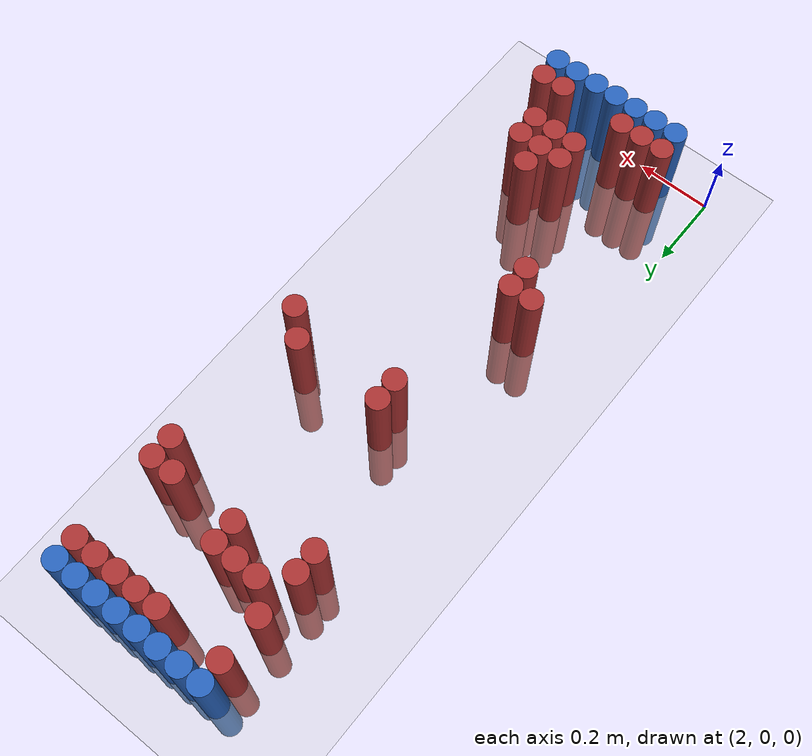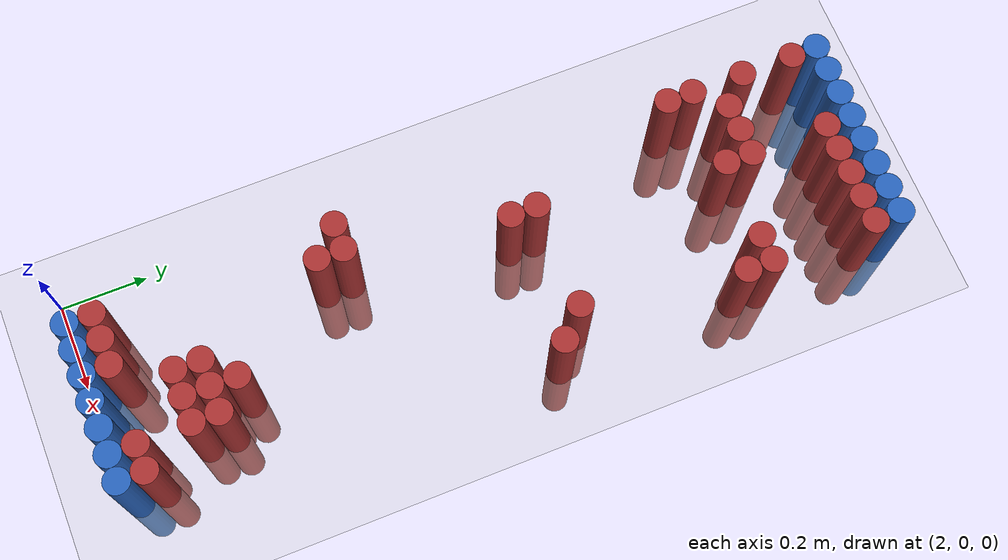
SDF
<sdf version="1.6">
 <world name="default">
  <model name="ground_plane">
   <static>1</static>
   <link name="link">
    <collision name="collision">
     <geometry><plane><normal>0 0 1</normal><size>100 100</size></plane></geometry>
     <surface><friction><ode><mu>100</mu><mu2>50</mu2></ode></friction></surface>
    </collision>
    <visual name="visual">
     <cast_shadows>0</cast_shadows>
     <geometry><plane><normal>0 0 1</normal><size>100 100</size></plane></geometry>
     <material>
      <script><uri>file://media/materials/scripts/gazebo.material</uri><name>Gazebo/Grey</name></script>
     </material>
    </visual>
   </link>
  </model>
  <model name="unit_cylinder_96">
   <static>1</static>
   <pose>2.130000 1.770000 0.000000 0.000000 0.000000 0.000000</pose>
   <link name="link">
    <inertial>
     <mass>1</mass>
     <inertia><ixx>0.145833</ixx><ixy>0</ixy><ixz>0</ixz><iyy>0.145833</iyy><iyz>0</iyz><izz>0.125</izz></inertia>
    </inertial>
    <collision name="collision">
     <geometry><cylinder><radius>0.030000</radius><length>0.5</length></cylinder></geometry>
    </collision>
    <visual name="visual">
     <geometry><cylinder><radius>0.030000</radius><length>0.5</length></cylinder></geometry>
     <material>
      <ambient>0.152000 0.379000 0.720000 1</ambient>
      <diffuse>0.152000 0.379000 0.720000 1</diffuse>
     </material>
     <material>
      <script><name>Gazebo/Grey</name><uri>file://media/materials/scripts/gazebo.material</uri></script>
     </material>
    </visual>
   </link>
  </model>
  <model name="unit_cylinder_97">
   <static>1</static>
   <pose>2.190000 1.770000 0.000000 0.000000 0.000000 0.000000</pose>
   <link name="link">
    <inertial>
     <mass>1</mass>
     <inertia><ixx>0.145833</ixx><ixy>0</ixy><ixz>0</ixz><iyy>0.145833</iyy><iyz>0</iyz><izz>0.125</izz></inertia>
    </inertial>
    <collision name="collision">
     <geometry><cylinder><radius>0.030000</radius><length>0.5</length></cylinder></geometry>
    </collision>
    <visual name="visual">
     <geometry><cylinder><radius>0.030000</radius><length>0.5</length></cylinder></geometry>
     <material>
      <ambient>0.152000 0.379000 0.720000 1</ambient>
      <diffuse>0.152000 0.379000 0.720000 1</diffuse>
     </material>
     <material>
      <script><name>Gazebo/Grey</name><uri>file://media/materials/scripts/gazebo.material</uri></script>
     </material>
    </visual>
   </link>
  </model>
  <model name="unit_cylinder_98">
   <static>1</static>
   <pose>2.250000 1.770000 0.000000 0.000000 0.000000 0.000000</pose>
   <link name="link">
    <inertial>
     <mass>1</mass>
     <inertia><ixx>0.145833</ixx><ixy>0</ixy><ixz>0</ixz><iyy>0.145833</iyy><iyz>0</iyz><izz>0.125</izz></inertia>
    </inertial>
    <collision name="collision">
     <geometry><cylinder><radius>0.030000</radius><length>0.5</length></cylinder></geometry>
    </collision>
    <visual name="visual">
     <geometry><cylinder><radius>0.030000</radius><length>0.5</length></cylinder></geometry>
     <material>
      <ambient>0.152000 0.379000 0.720000 1</ambient>
      <diffuse>0.152000 0.379000 0.720000 1</diffuse>
     </material>
     <material>
      <script><name>Gazebo/Grey</name><uri>file://media/materials/scripts/gazebo.material</uri></script>
     </material>
    </visual>
   </link>
  </model>
  <model name="unit_cylinder_99">
   <static>1</static>
   <pose>2.310000 1.770000 0.000000 0.000000 0.000000 0.000000</pose>
   <link name="link">
    <inertial>
     <mass>1</mass>
     <inertia><ixx>0.145833</ixx><ixy>0</ixy><ixz>0</ixz><iyy>0.145833</iyy><iyz>0</iyz><izz>0.125</izz></inertia>
    </inertial>
    <collision name="collision">
     <geometry><cylinder><radius>0.030000</radius><length>0.5</length></cylinder></geometry>
    </collision>
    <visual name="visual">
     <geometry><cylinder><radius>0.030000</radius><length>0.5</length></cylinder></geometry>
     <material>
      <ambient>0.152000 0.379000 0.720000 1</ambient>
      <diffuse>0.152000 0.379000 0.720000 1</diffuse>
     </material>
     <material>
      <script><name>Gazebo/Grey</name><uri>file://media/materials/scripts/gazebo.material</uri></script>
     </material>
    </visual>
   </link>
  </model>
  <model name="unit_cylinder_100">
   <static>1</static>
   <pose>2.370000 1.770000 0.000000 0.000000 0.000000 0.000000</pose>
   <link name="link">
    <inertial>
     <mass>1</mass>
     <inertia><ixx>0.145833</ixx><ixy>0</ixy><ixz>0</ixz><iyy>0.145833</iyy><iyz>0</iyz><izz>0.125</izz></inertia>
    </inertial>
    <collision name="collision">
     <geometry><cylinder><radius>0.030000</radius><length>0.5</length></cylinder></geometry>
    </collision>
    <visual name="visual">
     <geometry><cylinder><radius>0.030000</radius><length>0.5</length></cylinder></geometry>
     <material>
      <ambient>0.152000 0.379000 0.720000 1</ambient>
      <diffuse>0.152000 0.379000 0.720000 1</diffuse>
     </material>
     <material>
      <script><name>Gazebo/Grey</name><uri>file://media/materials/scripts/gazebo.material</uri></script>
     </material>
    </visual>
   </link>
  </model>
  <model name="unit_cylinder_101">
   <static>1</static>
   <pose>2.430000 1.770000 0.000000 0.000000 0.000000 0.000000</pose>
   <link name="link">
    <inertial>
     <mass>1</mass>
     <inertia><ixx>0.145833</ixx><ixy>0</ixy><ixz>0</ixz><iyy>0.145833</iyy><iyz>0</iyz><izz>0.125</izz></inertia>
    </inertial>
    <collision name="collision">
     <geometry><cylinder><radius>0.030000</radius><length>0.5</length></cylinder></geometry>
    </collision>
    <visual name="visual">
     <geometry><cylinder><radius>0.030000</radius><length>0.5</length></cylinder></geometry>
     <material>
      <ambient>0.152000 0.379000 0.720000 1</ambient>
      <diffuse>0.152000 0.379000 0.720000 1</diffuse>
     </material>
     <material>
      <script><name>Gazebo/Grey</name><uri>file://media/materials/scripts/gazebo.material</uri></script>
     </material>
    </visual>
   </link>
  </model>
  <model name="unit_cylinder_102">
   <static>1</static>
   <pose>2.490000 1.770000 0.000000 0.000000 0.000000 0.000000</pose>
   <link name="link">
    <inertial>
     <mass>1</mass>
     <inertia><ixx>0.145833</ixx><ixy>0</ixy><ixz>0</ixz><iyy>0.145833</iyy><iyz>0</iyz><izz>0.125</izz></inertia>
    </inertial>
    <collision name="collision">
     <geometry><cylinder><radius>0.030000</radius><length>0.5</length></cylinder></geometry>
    </collision>
    <visual name="visual">
     <geometry><cylinder><radius>0.030000</radius><length>0.5</length></cylinder></geometry>
     <material>
      <ambient>0.152000 0.379000 0.720000 1</ambient>
      <diffuse>0.152000 0.379000 0.720000 1</diffuse>
     </material>
     <material>
      <script><name>Gazebo/Grey</name><uri>file://media/materials/scripts/gazebo.material</uri></script>
     </material>
    </visual>
   </link>
  </model>
  <model name="unit_cylinder_103">
   <static>1</static>
   <pose>2.550000 1.770000 0.000000 0.000000 0.000000 0.000000</pose>
   <link name="link">
    <inertial>
     <mass>1</mass>
     <inertia><ixx>0.145833</ixx><ixy>0</ixy><ixz>0</ixz><iyy>0.145833</iyy><iyz>0</iyz><izz>0.125</izz></inertia>
    </inertial>
    <collision name="collision">
     <geometry><cylinder><radius>0.030000</radius><length>0.5</length></cylinder></geometry>
    </collision>
    <visual name="visual">
     <geometry><cylinder><radius>0.030000</radius><length>0.5</length></cylinder></geometry>
     <material>
      <ambient>0.152000 0.379000 0.720000 1</ambient>
      <diffuse>0.152000 0.379000 0.720000 1</diffuse>
     </material>
     <material>
      <script><name>Gazebo/Grey</name><uri>file://media/materials/scripts/gazebo.material</uri></script>
     </material>
    </visual>
   </link>
  </model>
  <model name="unit_cylinder_125">
   <static>1</static>
   <pose>2.130000 1.710000 0.000000 0.000000 0.000000 0.000000</pose>
   <link name="link">
    <inertial>
     <mass>1</mass>
     <inertia><ixx>0.145833</ixx><ixy>0</ixy><ixz>0</ixz><iyy>0.145833</iyy><iyz>0</iyz><izz>0.125</izz></inertia>
    </inertial>
    <collision name="collision">
     <geometry><cylinder><radius>0.030000</radius><length>0.5</length></cylinder></geometry>
    </collision>
    <visual name="visual">
     <geometry><cylinder><radius>0.030000</radius><length>0.5</length></cylinder></geometry>
     <material>
      <ambient>0.648000 0.192000 0.192000 1</ambient>
      <diffuse>0.648000 0.192000 0.192000 1</diffuse>
     </material>
     <material>
      <script><name>Gazebo/Grey</name><uri>file://media/materials/scripts/gazebo.material</uri></script>
     </material>
    </visual>
   </link>
  </model>
  <model name="unit_cylinder_126">
   <static>1</static>
   <pose>2.310000 1.710000 0.000000 0.000000 0.000000 0.000000</pose>
   <link name="link">
    <inertial>
     <mass>1</mass>
     <inertia><ixx>0.145833</ixx><ixy>0</ixy><ixz>0</ixz><iyy>0.145833</iyy><iyz>0</iyz><izz>0.125</izz></inertia>
    </inertial>
    <collision name="collision">
     <geometry><cylinder><radius>0.030000</radius><length>0.5</length></cylinder></geometry>
    </collision>
    <visual name="visual">
     <geometry><cylinder><radius>0.030000</radius><length>0.5</length></cylinder></geometry>
     <material>
      <ambient>0.648000 0.192000 0.192000 1</ambient>
      <diffuse>0.648000 0.192000 0.192000 1</diffuse>
     </material>
     <material>
      <script><name>Gazebo/Grey</name><uri>file://media/materials/scripts/gazebo.material</uri></script>
     </material>
    </visual>
   </link>
  </model>
  <model name="unit_cylinder_127">
   <static>1</static>
   <pose>2.370000 1.710000 0.000000 0.000000 0.000000 0.000000</pose>
   <link name="link">
    <inertial>
     <mass>1</mass>
     <inertia><ixx>0.145833</ixx><ixy>0</ixy><ixz>0</ixz><iyy>0.145833</iyy><iyz>0</iyz><izz>0.125</izz></inertia>
    </inertial>
    <collision name="collision">
     <geometry><cylinder><radius>0.030000</radius><length>0.5</length></cylinder></geometry>
    </collision>
    <visual name="visual">
     <geometry><cylinder><radius>0.030000</radius><length>0.5</length></cylinder></geometry>
     <material>
      <ambient>0.648000 0.192000 0.192000 1</ambient>
      <diffuse>0.648000 0.192000 0.192000 1</diffuse>
     </material>
     <material>
      <script><name>Gazebo/Grey</name><uri>file://media/materials/scripts/gazebo.material</uri></script>
     </material>
    </visual>
   </link>
  </model>
  <model name="unit_cylinder_128">
   <static>1</static>
   <pose>2.430000 1.710000 0.000000 0.000000 0.000000 0.000000</pose>
   <link name="link">
    <inertial>
     <mass>1</mass>
     <inertia><ixx>0.145833</ixx><ixy>0</ixy><ixz>0</ixz><iyy>0.145833</iyy><iyz>0</iyz><izz>0.125</izz></inertia>
    </inertial>
    <collision name="collision">
     <geometry><cylinder><radius>0.030000</radius><length>0.5</length></cylinder></geometry>
    </collision>
    <visual name="visual">
     <geometry><cylinder><radius>0.030000</radius><length>0.5</length></cylinder></geometry>
     <material>
      <ambient>0.648000 0.192000 0.192000 1</ambient>
      <diffuse>0.648000 0.192000 0.192000 1</diffuse>
     </material>
     <material>
      <script><name>Gazebo/Grey</name><uri>file://media/materials/scripts/gazebo.material</uri></script>
     </material>
    </visual>
   </link>
  </model>
  <model name="unit_cylinder_129">
   <static>1</static>
   <pose>2.490000 1.710000 0.000000 0.000000 0.000000 0.000000</pose>
   <link name="link">
    <inertial>
     <mass>1</mass>
     <inertia><ixx>0.145833</ixx><ixy>0</ixy><ixz>0</ixz><iyy>0.145833</iyy><iyz>0</iyz><izz>0.125</izz></inertia>
    </inertial>
    <collision name="collision">
     <geometry><cylinder><radius>0.030000</radius><length>0.5</length></cylinder></geometry>
    </collision>
    <visual name="visual">
     <geometry><cylinder><radius>0.030000</radius><length>0.5</length></cylinder></geometry>
     <material>
      <ambient>0.648000 0.192000 0.192000 1</ambient>
      <diffuse>0.648000 0.192000 0.192000 1</diffuse>
     </material>
     <material>
      <script><name>Gazebo/Grey</name><uri>file://media/materials/scripts/gazebo.material</uri></script>
     </material>
    </visual>
   </link>
  </model>
  <model name="unit_cylinder_130">
   <static>1</static>
   <pose>2.550000 1.710000 0.000000 0.000000 0.000000 0.000000</pose>
   <link name="link">
    <inertial>
     <mass>1</mass>
     <inertia><ixx>0.145833</ixx><ixy>0</ixy><ixz>0</ixz><iyy>0.145833</iyy><iyz>0</iyz><izz>0.125</izz></inertia>
    </inertial>
    <collision name="collision">
     <geometry><cylinder><radius>0.030000</radius><length>0.5</length></cylinder></geometry>
    </collision>
    <visual name="visual">
     <geometry><cylinder><radius>0.030000</radius><length>0.5</length></cylinder></geometry>
     <material>
      <ambient>0.648000 0.192000 0.192000 1</ambient>
      <diffuse>0.648000 0.192000 0.192000 1</diffuse>
     </material>
     <material>
      <script><name>Gazebo/Grey</name><uri>file://media/materials/scripts/gazebo.material</uri></script>
     </material>
    </visual>
   </link>
  </model>
  <model name="unit_cylinder_147">
   <static>1</static>
   <pose>2.130000 1.590000 0.000000 0.000000 0.000000 0.000000</pose>
   <link name="link">
    <inertial>
     <mass>1</mass>
     <inertia><ixx>0.145833</ixx><ixy>0</ixy><ixz>0</ixz><iyy>0.145833</iyy><iyz>0</iyz><izz>0.125</izz></inertia>
    </inertial>
    <collision name="collision">
     <geometry><cylinder><radius>0.030000</radius><length>0.5</length></cylinder></geometry>
    </collision>
    <visual name="visual">
     <geometry><cylinder><radius>0.030000</radius><length>0.5</length></cylinder></geometry>
     <material>
      <ambient>0.648000 0.192000 0.192000 1</ambient>
      <diffuse>0.648000 0.192000 0.192000 1</diffuse>
     </material>
     <material>
      <script><name>Gazebo/Grey</name><uri>file://media/materials/scripts/gazebo.material</uri></script>
     </material>
    </visual>
   </link>
  </model>
  <model name="unit_cylinder_148">
   <static>1</static>
   <pose>2.190000 1.530000 0.000000 0.000000 0.000000 0.000000</pose>
   <link name="link">
    <inertial>
     <mass>1</mass>
     <inertia><ixx>0.145833</ixx><ixy>0</ixy><ixz>0</ixz><iyy>0.145833</iyy><iyz>0</iyz><izz>0.125</izz></inertia>
    </inertial>
    <collision name="collision">
     <geometry><cylinder><radius>0.030000</radius><length>0.5</length></cylinder></geometry>
    </collision>
    <visual name="visual">
     <geometry><cylinder><radius>0.030000</radius><length>0.5</length></cylinder></geometry>
     <material>
      <ambient>0.648000 0.192000 0.192000 1</ambient>
      <diffuse>0.648000 0.192000 0.192000 1</diffuse>
     </material>
     <material>
      <script><name>Gazebo/Grey</name><uri>file://media/materials/scripts/gazebo.material</uri></script>
     </material>
    </visual>
   </link>
  </model>
  <model name="unit_cylinder_149">
   <static>1</static>
   <pose>2.250000 1.530000 0.000000 0.000000 0.000000 0.000000</pose>
   <link name="link">
    <inertial>
     <mass>1</mass>
     <inertia><ixx>0.145833</ixx><ixy>0</ixy><ixz>0</ixz><iyy>0.145833</iyy><iyz>0</iyz><izz>0.125</izz></inertia>
    </inertial>
    <collision name="collision">
     <geometry><cylinder><radius>0.030000</radius><length>0.5</length></cylinder></geometry>
    </collision>
    <visual name="visual">
     <geometry><cylinder><radius>0.030000</radius><length>0.5</length></cylinder></geometry>
     <material>
      <ambient>0.648000 0.192000 0.192000 1</ambient>
      <diffuse>0.648000 0.192000 0.192000 1</diffuse>
     </material>
     <material>
      <script><name>Gazebo/Grey</name><uri>file://media/materials/scripts/gazebo.material</uri></script>
     </material>
    </visual>
   </link>
  </model>
  <model name="unit_cylinder_150">
   <static>1</static>
   <pose>2.310000 1.530000 0.000000 0.000000 0.000000 0.000000</pose>
   <link name="link">
    <inertial>
     <mass>1</mass>
     <inertia><ixx>0.145833</ixx><ixy>0</ixy><ixz>0</ixz><iyy>0.145833</iyy><iyz>0</iyz><izz>0.125</izz></inertia>
    </inertial>
    <collision name="collision">
     <geometry><cylinder><radius>0.030000</radius><length>0.5</length></cylinder></geometry>
    </collision>
    <visual name="visual">
     <geometry><cylinder><radius>0.030000</radius><length>0.5</length></cylinder></geometry>
     <material>
      <ambient>0.648000 0.192000 0.192000 1</ambient>
      <diffuse>0.648000 0.192000 0.192000 1</diffuse>
     </material>
     <material>
      <script><name>Gazebo/Grey</name><uri>file://media/materials/scripts/gazebo.material</uri></script>
     </material>
    </visual>
   </link>
  </model>
  <model name="unit_cylinder_151">
   <static>1</static>
   <pose>2.130000 1.470000 0.000000 0.000000 0.000000 0.000000</pose>
   <link name="link">
    <inertial>
     <mass>1</mass>
     <inertia><ixx>0.145833</ixx><ixy>0</ixy><ixz>0</ixz><iyy>0.145833</iyy><iyz>0</iyz><izz>0.125</izz></inertia>
    </inertial>
    <collision name="collision">
     <geometry><cylinder><radius>0.030000</radius><length>0.5</length></cylinder></geometry>
    </collision>
    <visual name="visual">
     <geometry><cylinder><radius>0.030000</radius><length>0.5</length></cylinder></geometry>
     <material>
      <ambient>0.648000 0.192000 0.192000 1</ambient>
      <diffuse>0.648000 0.192000 0.192000 1</diffuse>
     </material>
     <material>
      <script><name>Gazebo/Grey</name><uri>file://media/materials/scripts/gazebo.material</uri></script>
     </material>
    </visual>
   </link>
  </model>
  <model name="unit_cylinder_152">
   <static>1</static>
   <pose>2.310000 1.470000 0.000000 0.000000 0.000000 0.000000</pose>
   <link name="link">
    <inertial>
     <mass>1</mass>
     <inertia><ixx>0.145833</ixx><ixy>0</ixy><ixz>0</ixz><iyy>0.145833</iyy><iyz>0</iyz><izz>0.125</izz></inertia>
    </inertial>
    <collision name="collision">
     <geometry><cylinder><radius>0.030000</radius><length>0.5</length></cylinder></geometry>
    </collision>
    <visual name="visual">
     <geometry><cylinder><radius>0.030000</radius><length>0.5</length></cylinder></geometry>
     <material>
      <ambient>0.648000 0.192000 0.192000 1</ambient>
      <diffuse>0.648000 0.192000 0.192000 1</diffuse>
     </material>
     <material>
      <script><name>Gazebo/Grey</name><uri>file://media/materials/scripts/gazebo.material</uri></script>
     </material>
    </visual>
   </link>
  </model>
  <model name="unit_cylinder_153">
   <static>1</static>
   <pose>2.490000 1.470000 0.000000 0.000000 0.000000 0.000000</pose>
   <link name="link">
    <inertial>
     <mass>1</mass>
     <inertia><ixx>0.145833</ixx><ixy>0</ixy><ixz>0</ixz><iyy>0.145833</iyy><iyz>0</iyz><izz>0.125</izz></inertia>
    </inertial>
    <collision name="collision">
     <geometry><cylinder><radius>0.030000</radius><length>0.5</length></cylinder></geometry>
    </collision>
    <visual name="visual">
     <geometry><cylinder><radius>0.030000</radius><length>0.5</length></cylinder></geometry>
     <material>
      <ambient>0.648000 0.192000 0.192000 1</ambient>
      <diffuse>0.648000 0.192000 0.192000 1</diffuse>
     </material>
     <material>
      <script><name>Gazebo/Grey</name><uri>file://media/materials/scripts/gazebo.material</uri></script>
     </material>
    </visual>
   </link>
  </model>
  <model name="unit_cylinder_154">
   <static>1</static>
   <pose>2.550000 1.470000 0.000000 0.000000 0.000000 0.000000</pose>
   <link name="link">
    <inertial>
     <mass>1</mass>
     <inertia><ixx>0.145833</ixx><ixy>0</ixy><ixz>0</ixz><iyy>0.145833</iyy><iyz>0</iyz><izz>0.125</izz></inertia>
    </inertial>
    <collision name="collision">
     <geometry><cylinder><radius>0.030000</radius><length>0.5</length></cylinder></geometry>
    </collision>
    <visual name="visual">
     <geometry><cylinder><radius>0.030000</radius><length>0.5</length></cylinder></geometry>
     <material>
      <ambient>0.648000 0.192000 0.192000 1</ambient>
      <diffuse>0.648000 0.192000 0.192000 1</diffuse>
     </material>
     <material>
      <script><name>Gazebo/Grey</name><uri>file://media/materials/scripts/gazebo.material</uri></script>
     </material>
    </visual>
   </link>
  </model>
  <model name="unit_cylinder_156">
   <static>1</static>
   <pose>2.130000 1.410000 0.000000 0.000000 0.000000 0.000000</pose>
   <link name="link">
    <inertial>
     <mass>1</mass>
     <inertia><ixx>0.145833</ixx><ixy>0</ixy><ixz>0</ixz><iyy>0.145833</iyy><iyz>0</iyz><izz>0.125</izz></inertia>
    </inertial>
    <collision name="collision">
     <geometry><cylinder><radius>0.030000</radius><length>0.5</length></cylinder></geometry>
    </collision>
    <visual name="visual">
     <geometry><cylinder><radius>0.030000</radius><length>0.5</length></cylinder></geometry>
     <material>
      <ambient>0.648000 0.192000 0.192000 1</ambient>
      <diffuse>0.648000 0.192000 0.192000 1</diffuse>
     </material>
     <material>
      <script><name>Gazebo/Grey</name><uri>file://media/materials/scripts/gazebo.material</uri></script>
     </material>
    </visual>
   </link>
  </model>
  <model name="unit_cylinder_157">
   <static>1</static>
   <pose>2.550000 1.410000 0.000000 0.000000 0.000000 0.000000</pose>
   <link name="link">
    <inertial>
     <mass>1</mass>
     <inertia><ixx>0.145833</ixx><ixy>0</ixy><ixz>0</ixz><iyy>0.145833</iyy><iyz>0</iyz><izz>0.125</izz></inertia>
    </inertial>
    <collision name="collision">
     <geometry><cylinder><radius>0.030000</radius><length>0.5</length></cylinder></geometry>
    </collision>
    <visual name="visual">
     <geometry><cylinder><radius>0.030000</radius><length>0.5</length></cylinder></geometry>
     <material>
      <ambient>0.648000 0.192000 0.192000 1</ambient>
      <diffuse>0.648000 0.192000 0.192000 1</diffuse>
     </material>
     <material>
      <script><name>Gazebo/Grey</name><uri>file://media/materials/scripts/gazebo.material</uri></script>
     </material>
    </visual>
   </link>
  </model>
  <model name="unit_cylinder_162">
   <static>1</static>
   <pose>2.250000 1.050000 0.000000 0.000000 0.000000 0.000000</pose>
   <link name="link">
    <inertial>
     <mass>1</mass>
     <inertia><ixx>0.145833</ixx><ixy>0</ixy><ixz>0</ixz><iyy>0.145833</iyy><iyz>0</iyz><izz>0.125</izz></inertia>
    </inertial>
    <collision name="collision">
     <geometry><cylinder><radius>0.030000</radius><length>0.5</length></cylinder></geometry>
    </collision>
    <visual name="visual">
     <geometry><cylinder><radius>0.030000</radius><length>0.5</length></cylinder></geometry>
     <material>
      <ambient>0.648000 0.192000 0.192000 1</ambient>
      <diffuse>0.648000 0.192000 0.192000 1</diffuse>
     </material>
     <material>
      <script><name>Gazebo/Grey</name><uri>file://media/materials/scripts/gazebo.material</uri></script>
     </material>
    </visual>
   </link>
  </model>
  <model name="unit_cylinder_163">
   <static>1</static>
   <pose>2.490000 1.050000 0.000000 0.000000 0.000000 0.000000</pose>
   <link name="link">
    <inertial>
     <mass>1</mass>
     <inertia><ixx>0.145833</ixx><ixy>0</ixy><ixz>0</ixz><iyy>0.145833</iyy><iyz>0</iyz><izz>0.125</izz></inertia>
    </inertial>
    <collision name="collision">
     <geometry><cylinder><radius>0.030000</radius><length>0.5</length></cylinder></geometry>
    </collision>
    <visual name="visual">
     <geometry><cylinder><radius>0.030000</radius><length>0.5</length></cylinder></geometry>
     <material>
      <ambient>0.648000 0.192000 0.192000 1</ambient>
      <diffuse>0.648000 0.192000 0.192000 1</diffuse>
     </material>
     <material>
      <script><name>Gazebo/Grey</name><uri>file://media/materials/scripts/gazebo.material</uri></script>
     </material>
    </visual>
   </link>
  </model>
  <model name="unit_cylinder_164">
   <static>1</static>
   <pose>2.250000 0.990000 0.000000 0.000000 0.000000 0.000000</pose>
   <link name="link">
    <inertial>
     <mass>1</mass>
     <inertia><ixx>0.145833</ixx><ixy>0</ixy><ixz>0</ixz><iyy>0.145833</iyy><iyz>0</iyz><izz>0.125</izz></inertia>
    </inertial>
    <collision name="collision">
     <geometry><cylinder><radius>0.030000</radius><length>0.5</length></cylinder></geometry>
    </collision>
    <visual name="visual">
     <geometry><cylinder><radius>0.030000</radius><length>0.5</length></cylinder></geometry>
     <material>
      <ambient>0.648000 0.192000 0.192000 1</ambient>
      <diffuse>0.648000 0.192000 0.192000 1</diffuse>
     </material>
     <material>
      <script><name>Gazebo/Grey</name><uri>file://media/materials/scripts/gazebo.material</uri></script>
     </material>
    </visual>
   </link>
  </model>
  <model name="unit_cylinder_165">
   <static>1</static>
   <pose>2.550000 0.990000 0.000000 0.000000 0.000000 0.000000</pose>
   <link name="link">
    <inertial>
     <mass>1</mass>
     <inertia><ixx>0.145833</ixx><ixy>0</ixy><ixz>0</ixz><iyy>0.145833</iyy><iyz>0</iyz><izz>0.125</izz></inertia>
    </inertial>
    <collision name="collision">
     <geometry><cylinder><radius>0.030000</radius><length>0.5</length></cylinder></geometry>
    </collision>
    <visual name="visual">
     <geometry><cylinder><radius>0.030000</radius><length>0.5</length></cylinder></geometry>
     <material>
      <ambient>0.648000 0.192000 0.192000 1</ambient>
      <diffuse>0.648000 0.192000 0.192000 1</diffuse>
     </material>
     <material>
      <script><name>Gazebo/Grey</name><uri>file://media/materials/scripts/gazebo.material</uri></script>
     </material>
    </visual>
   </link>
  </model>
  <model name="unit_cylinder_197">
   <static>1</static>
   <pose>2.130000 0.630000 0.000000 0.000000 0.000000 0.000000</pose>
   <link name="link">
    <inertial>
     <mass>1</mass>
     <inertia><ixx>0.145833</ixx><ixy>0</ixy><ixz>0</ixz><iyy>0.145833</iyy><iyz>0</iyz><izz>0.125</izz></inertia>
    </inertial>
    <collision name="collision">
     <geometry><cylinder><radius>0.030000</radius><length>0.5</length></cylinder></geometry>
    </collision>
    <visual name="visual">
     <geometry><cylinder><radius>0.030000</radius><length>0.5</length></cylinder></geometry>
     <material>
      <ambient>0.648000 0.192000 0.192000 1</ambient>
      <diffuse>0.648000 0.192000 0.192000 1</diffuse>
     </material>
     <material>
      <script><name>Gazebo/Grey</name><uri>file://media/materials/scripts/gazebo.material</uri></script>
     </material>
    </visual>
   </link>
  </model>
  <model name="unit_cylinder_198">
   <static>1</static>
   <pose>2.190000 0.630000 0.000000 0.000000 0.000000 0.000000</pose>
   <link name="link">
    <inertial>
     <mass>1</mass>
     <inertia><ixx>0.145833</ixx><ixy>0</ixy><ixz>0</ixz><iyy>0.145833</iyy><iyz>0</iyz><izz>0.125</izz></inertia>
    </inertial>
    <collision name="collision">
     <geometry><cylinder><radius>0.030000</radius><length>0.5</length></cylinder></geometry>
    </collision>
    <visual name="visual">
     <geometry><cylinder><radius>0.030000</radius><length>0.5</length></cylinder></geometry>
     <material>
      <ambient>0.648000 0.192000 0.192000 1</ambient>
      <diffuse>0.648000 0.192000 0.192000 1</diffuse>
     </material>
     <material>
      <script><name>Gazebo/Grey</name><uri>file://media/materials/scripts/gazebo.material</uri></script>
     </material>
    </visual>
   </link>
  </model>
  <model name="unit_cylinder_203">
   <static>1</static>
   <pose>2.190000 0.570000 0.000000 0.000000 0.000000 0.000000</pose>
   <link name="link">
    <inertial>
     <mass>1</mass>
     <inertia><ixx>0.145833</ixx><ixy>0</ixy><ixz>0</ixz><iyy>0.145833</iyy><iyz>0</iyz><izz>0.125</izz></inertia>
    </inertial>
    <collision name="collision">
     <geometry><cylinder><radius>0.030000</radius><length>0.5</length></cylinder></geometry>
    </collision>
    <visual name="visual">
     <geometry><cylinder><radius>0.030000</radius><length>0.5</length></cylinder></geometry>
     <material>
      <ambient>0.648000 0.192000 0.192000 1</ambient>
      <diffuse>0.648000 0.192000 0.192000 1</diffuse>
     </material>
     <material>
      <script><name>Gazebo/Grey</name><uri>file://media/materials/scripts/gazebo.material</uri></script>
     </material>
    </visual>
   </link>
  </model>
  <model name="unit_cylinder_221">
   <static>1</static>
   <pose>2.370000 0.330000 0.000000 0.000000 0.000000 0.000000</pose>
   <link name="link">
    <inertial>
     <mass>1</mass>
     <inertia><ixx>0.145833</ixx><ixy>0</ixy><ixz>0</ixz><iyy>0.145833</iyy><iyz>0</iyz><izz>0.125</izz></inertia>
    </inertial>
    <collision name="collision">
     <geometry><cylinder><radius>0.030000</radius><length>0.5</length></cylinder></geometry>
    </collision>
    <visual name="visual">
     <geometry><cylinder><radius>0.030000</radius><length>0.5</length></cylinder></geometry>
     <material>
      <ambient>0.648000 0.192000 0.192000 1</ambient>
      <diffuse>0.648000 0.192000 0.192000 1</diffuse>
     </material>
     <material>
      <script><name>Gazebo/Grey</name><uri>file://media/materials/scripts/gazebo.material</uri></script>
     </material>
    </visual>
   </link>
  </model>
  <model name="unit_cylinder_229">
   <static>1</static>
   <pose>2.310000 0.270000 0.000000 0.000000 0.000000 0.000000</pose>
   <link name="link">
    <inertial>
     <mass>1</mass>
     <inertia><ixx>0.145833</ixx><ixy>0</ixy><ixz>0</ixz><iyy>0.145833</iyy><iyz>0</iyz><izz>0.125</izz></inertia>
    </inertial>
    <collision name="collision">
     <geometry><cylinder><radius>0.030000</radius><length>0.5</length></cylinder></geometry>
    </collision>
    <visual name="visual">
     <geometry><cylinder><radius>0.030000</radius><length>0.5</length></cylinder></geometry>
     <material>
      <ambient>0.648000 0.192000 0.192000 1</ambient>
      <diffuse>0.648000 0.192000 0.192000 1</diffuse>
     </material>
     <material>
      <script><name>Gazebo/Grey</name><uri>file://media/materials/scripts/gazebo.material</uri></script>
     </material>
    </visual>
   </link>
  </model>
  <model name="unit_cylinder_230">
   <static>1</static>
   <pose>2.370000 0.270000 0.000000 0.000000 0.000000 0.000000</pose>
   <link name="link">
    <inertial>
     <mass>1</mass>
     <inertia><ixx>0.145833</ixx><ixy>0</ixy><ixz>0</ixz><iyy>0.145833</iyy><iyz>0</iyz><izz>0.125</izz></inertia>
    </inertial>
    <collision name="collision">
     <geometry><cylinder><radius>0.030000</radius><length>0.5</length></cylinder></geometry>
    </collision>
    <visual name="visual">
     <geometry><cylinder><radius>0.030000</radius><length>0.5</length></cylinder></geometry>
     <material>
      <ambient>0.648000 0.192000 0.192000 1</ambient>
      <diffuse>0.648000 0.192000 0.192000 1</diffuse>
     </material>
     <material>
      <script><name>Gazebo/Grey</name><uri>file://media/materials/scripts/gazebo.material</uri></script>
     </material>
    </visual>
   </link>
  </model>
  <model name="unit_cylinder_231">
   <static>1</static>
   <pose>2.430000 0.270000 0.000000 0.000000 0.000000 0.000000</pose>
   <link name="link">
    <inertial>
     <mass>1</mass>
     <inertia><ixx>0.145833</ixx><ixy>0</ixy><ixz>0</ixz><iyy>0.145833</iyy><iyz>0</iyz><izz>0.125</izz></inertia>
    </inertial>
    <collision name="collision">
     <geometry><cylinder><radius>0.030000</radius><length>0.5</length></cylinder></geometry>
    </collision>
    <visual name="visual">
     <geometry><cylinder><radius>0.030000</radius><length>0.5</length></cylinder></geometry>
     <material>
      <ambient>0.648000 0.192000 0.192000 1</ambient>
      <diffuse>0.648000 0.192000 0.192000 1</diffuse>
     </material>
     <material>
      <script><name>Gazebo/Grey</name><uri>file://media/materials/scripts/gazebo.material</uri></script>
     </material>
    </visual>
   </link>
  </model>
  <model name="unit_cylinder_240">
   <static>1</static>
   <pose>2.310000 0.210000 0.000000 0.000000 0.000000 0.000000</pose>
   <link name="link">
    <inertial>
     <mass>1</mass>
     <inertia><ixx>0.145833</ixx><ixy>0</ixy><ixz>0</ixz><iyy>0.145833</iyy><iyz>0</iyz><izz>0.125</izz></inertia>
    </inertial>
    <collision name="collision">
     <geometry><cylinder><radius>0.030000</radius><length>0.5</length></cylinder></geometry>
    </collision>
    <visual name="visual">
     <geometry><cylinder><radius>0.030000</radius><length>0.5</length></cylinder></geometry>
     <material>
      <ambient>0.648000 0.192000 0.192000 1</ambient>
      <diffuse>0.648000 0.192000 0.192000 1</diffuse>
     </material>
     <material>
      <script><name>Gazebo/Grey</name><uri>file://media/materials/scripts/gazebo.material</uri></script>
     </material>
    </visual>
   </link>
  </model>
  <model name="unit_cylinder_241">
   <static>1</static>
   <pose>2.370000 0.210000 0.000000 0.000000 0.000000 0.000000</pose>
   <link name="link">
    <inertial>
     <mass>1</mass>
     <inertia><ixx>0.145833</ixx><ixy>0</ixy><ixz>0</ixz><iyy>0.145833</iyy><iyz>0</iyz><izz>0.125</izz></inertia>
    </inertial>
    <collision name="collision">
     <geometry><cylinder><radius>0.030000</radius><length>0.5</length></cylinder></geometry>
    </collision>
    <visual name="visual">
     <geometry><cylinder><radius>0.030000</radius><length>0.5</length></cylinder></geometry>
     <material>
      <ambient>0.648000 0.192000 0.192000 1</ambient>
      <diffuse>0.648000 0.192000 0.192000 1</diffuse>
     </material>
     <material>
      <script><name>Gazebo/Grey</name><uri>file://media/materials/scripts/gazebo.material</uri></script>
     </material>
    </visual>
   </link>
  </model>
  <model name="unit_cylinder_242">
   <static>1</static>
   <pose>2.430000 0.210000 0.000000 0.000000 0.000000 0.000000</pose>
   <link name="link">
    <inertial>
     <mass>1</mass>
     <inertia><ixx>0.145833</ixx><ixy>0</ixy><ixz>0</ixz><iyy>0.145833</iyy><iyz>0</iyz><izz>0.125</izz></inertia>
    </inertial>
    <collision name="collision">
     <geometry><cylinder><radius>0.030000</radius><length>0.5</length></cylinder></geometry>
    </collision>
    <visual name="visual">
     <geometry><cylinder><radius>0.030000</radius><length>0.5</length></cylinder></geometry>
     <material>
      <ambient>0.648000 0.192000 0.192000 1</ambient>
      <diffuse>0.648000 0.192000 0.192000 1</diffuse>
     </material>
     <material>
      <script><name>Gazebo/Grey</name><uri>file://media/materials/scripts/gazebo.material</uri></script>
     </material>
    </visual>
   </link>
  </model>
  <model name="unit_cylinder_249">
   <static>1</static>
   <pose>2.130000 0.090000 0.000000 0.000000 0.000000 0.000000</pose>
   <link name="link">
    <inertial>
     <mass>1</mass>
     <inertia><ixx>0.145833</ixx><ixy>0</ixy><ixz>0</ixz><iyy>0.145833</iyy><iyz>0</iyz><izz>0.125</izz></inertia>
    </inertial>
    <collision name="collision">
     <geometry><cylinder><radius>0.030000</radius><length>0.5</length></cylinder></geometry>
    </collision>
    <visual name="visual">
     <geometry><cylinder><radius>0.030000</radius><length>0.5</length></cylinder></geometry>
     <material>
      <ambient>0.648000 0.192000 0.192000 1</ambient>
      <diffuse>0.648000 0.192000 0.192000 1</diffuse>
     </material>
     <material>
      <script><name>Gazebo/Grey</name><uri>file://media/materials/scripts/gazebo.material</uri></script>
     </material>
    </visual>
   </link>
  </model>
  <model name="unit_cylinder_250">
   <static>1</static>
   <pose>2.190000 0.090000 0.000000 0.000000 0.000000 0.000000</pose>
   <link name="link">
    <inertial>
     <mass>1</mass>
     <inertia><ixx>0.145833</ixx><ixy>0</ixy><ixz>0</ixz><iyy>0.145833</iyy><iyz>0</iyz><izz>0.125</izz></inertia>
    </inertial>
    <collision name="collision">
     <geometry><cylinder><radius>0.030000</radius><length>0.5</length></cylinder></geometry>
    </collision>
    <visual name="visual">
     <geometry><cylinder><radius>0.030000</radius><length>0.5</length></cylinder></geometry>
     <material>
      <ambient>0.648000 0.192000 0.192000 1</ambient>
      <diffuse>0.648000 0.192000 0.192000 1</diffuse>
     </material>
     <material>
      <script><name>Gazebo/Grey</name><uri>file://media/materials/scripts/gazebo.material</uri></script>
     </material>
    </visual>
   </link>
  </model>
  <model name="unit_cylinder_251">
   <static>1</static>
   <pose>2.250000 0.090000 0.000000 0.000000 0.000000 0.000000</pose>
   <link name="link">
    <inertial>
     <mass>1</mass>
     <inertia><ixx>0.145833</ixx><ixy>0</ixy><ixz>0</ixz><iyy>0.145833</iyy><iyz>0</iyz><izz>0.125</izz></inertia>
    </inertial>
    <collision name="collision">
     <geometry><cylinder><radius>0.030000</radius><length>0.5</length></cylinder></geometry>
    </collision>
    <visual name="visual">
     <geometry><cylinder><radius>0.030000</radius><length>0.5</length></cylinder></geometry>
     <material>
      <ambient>0.648000 0.192000 0.192000 1</ambient>
      <diffuse>0.648000 0.192000 0.192000 1</diffuse>
     </material>
     <material>
      <script><name>Gazebo/Grey</name><uri>file://media/materials/scripts/gazebo.material</uri></script>
     </material>
    </visual>
   </link>
  </model>
  <model name="unit_cylinder_252">
   <static>1</static>
   <pose>2.430000 0.090000 0.000000 0.000000 0.000000 0.000000</pose>
   <link name="link">
    <inertial>
     <mass>1</mass>
     <inertia><ixx>0.145833</ixx><ixy>0</ixy><ixz>0</ixz><iyy>0.145833</iyy><iyz>0</iyz><izz>0.125</izz></inertia>
    </inertial>
    <collision name="collision">
     <geometry><cylinder><radius>0.030000</radius><length>0.5</length></cylinder></geometry>
    </collision>
    <visual name="visual">
     <geometry><cylinder><radius>0.030000</radius><length>0.5</length></cylinder></geometry>
     <material>
      <ambient>0.648000 0.192000 0.192000 1</ambient>
      <diffuse>0.648000 0.192000 0.192000 1</diffuse>
     </material>
     <material>
      <script><name>Gazebo/Grey</name><uri>file://media/materials/scripts/gazebo.material</uri></script>
     </material>
    </visual>
   </link>
  </model>
  <model name="unit_cylinder_253">
   <static>1</static>
   <pose>2.490000 0.090000 0.000000 0.000000 0.000000 0.000000</pose>
   <link name="link">
    <inertial>
     <mass>1</mass>
     <inertia><ixx>0.145833</ixx><ixy>0</ixy><ixz>0</ixz><iyy>0.145833</iyy><iyz>0</iyz><izz>0.125</izz></inertia>
    </inertial>
    <collision name="collision">
     <geometry><cylinder><radius>0.030000</radius><length>0.5</length></cylinder></geometry>
    </collision>
    <visual name="visual">
     <geometry><cylinder><radius>0.030000</radius><length>0.5</length></cylinder></geometry>
     <material>
      <ambient>0.648000 0.192000 0.192000 1</ambient>
      <diffuse>0.648000 0.192000 0.192000 1</diffuse>
     </material>
     <material>
      <script><name>Gazebo/Grey</name><uri>file://media/materials/scripts/gazebo.material</uri></script>
     </material>
    </visual>
   </link>
  </model>
  <model name="unit_cylinder_269">
   <static>1</static>
   <pose>2.130000 0.030000 0.000000 0.000000 0.000000 0.000000</pose>
   <link name="link">
    <inertial>
     <mass>1</mass>
     <inertia><ixx>0.145833</ixx><ixy>0</ixy><ixz>0</ixz><iyy>0.145833</iyy><iyz>0</iyz><izz>0.125</izz></inertia>
    </inertial>
    <collision name="collision">
     <geometry><cylinder><radius>0.030000</radius><length>0.5</length></cylinder></geometry>
    </collision>
    <visual name="visual">
     <geometry><cylinder><radius>0.030000</radius><length>0.5</length></cylinder></geometry>
     <material>
      <ambient>0.152000 0.379000 0.720000 1</ambient>
      <diffuse>0.152000 0.379000 0.720000 1</diffuse>
     </material>
     <material>
      <script><name>Gazebo/Grey</name><uri>file://media/materials/scripts/gazebo.material</uri></script>
     </material>
    </visual>
   </link>
  </model>
  <model name="unit_cylinder_270">
   <static>1</static>
   <pose>2.190000 0.030000 0.000000 0.000000 0.000000 0.000000</pose>
   <link name="link">
    <inertial>
     <mass>1</mass>
     <inertia><ixx>0.145833</ixx><ixy>0</ixy><ixz>0</ixz><iyy>0.145833</iyy><iyz>0</iyz><izz>0.125</izz></inertia>
    </inertial>
    <collision name="collision">
     <geometry><cylinder><radius>0.030000</radius><length>0.5</length></cylinder></geometry>
    </collision>
    <visual name="visual">
     <geometry><cylinder><radius>0.030000</radius><length>0.5</length></cylinder></geometry>
     <material>
      <ambient>0.152000 0.379000 0.720000 1</ambient>
      <diffuse>0.152000 0.379000 0.720000 1</diffuse>
     </material>
     <material>
      <script><name>Gazebo/Grey</name><uri>file://media/materials/scripts/gazebo.material</uri></script>
     </material>
    </visual>
   </link>
  </model>
  <model name="unit_cylinder_271">
   <static>1</static>
   <pose>2.250000 0.030000 0.000000 0.000000 0.000000 0.000000</pose>
   <link name="link">
    <inertial>
     <mass>1</mass>
     <inertia><ixx>0.145833</ixx><ixy>0</ixy><ixz>0</ixz><iyy>0.145833</iyy><iyz>0</iyz><izz>0.125</izz></inertia>
    </inertial>
    <collision name="collision">
     <geometry><cylinder><radius>0.030000</radius><length>0.5</length></cylinder></geometry>
    </collision>
    <visual name="visual">
     <geometry><cylinder><radius>0.030000</radius><length>0.5</length></cylinder></geometry>
     <material>
      <ambient>0.152000 0.379000 0.720000 1</ambient>
      <diffuse>0.152000 0.379000 0.720000 1</diffuse>
     </material>
     <material>
      <script><name>Gazebo/Grey</name><uri>file://media/materials/scripts/gazebo.material</uri></script>
     </material>
    </visual>
   </link>
  </model>
  <model name="unit_cylinder_272">
   <static>1</static>
   <pose>2.310000 0.030000 0.000000 0.000000 0.000000 0.000000</pose>
   <link name="link">
    <inertial>
     <mass>1</mass>
     <inertia><ixx>0.145833</ixx><ixy>0</ixy><ixz>0</ixz><iyy>0.145833</iyy><iyz>0</iyz><izz>0.125</izz></inertia>
    </inertial>
    <collision name="collision">
     <geometry><cylinder><radius>0.030000</radius><length>0.5</length></cylinder></geometry>
    </collision>
    <visual name="visual">
     <geometry><cylinder><radius>0.030000</radius><length>0.5</length></cylinder></geometry>
     <material>
      <ambient>0.152000 0.379000 0.720000 1</ambient>
      <diffuse>0.152000 0.379000 0.720000 1</diffuse>
     </material>
     <material>
      <script><name>Gazebo/Grey</name><uri>file://media/materials/scripts/gazebo.material</uri></script>
     </material>
    </visual>
   </link>
  </model>
  <model name="unit_cylinder_273">
   <static>1</static>
   <pose>2.370000 0.030000 0.000000 0.000000 0.000000 0.000000</pose>
   <link name="link">
    <inertial>
     <mass>1</mass>
     <inertia><ixx>0.145833</ixx><ixy>0</ixy><ixz>0</ixz><iyy>0.145833</iyy><iyz>0</iyz><izz>0.125</izz></inertia>
    </inertial>
    <collision name="collision">
     <geometry><cylinder><radius>0.030000</radius><length>0.5</length></cylinder></geometry>
    </collision>
    <visual name="visual">
     <geometry><cylinder><radius>0.030000</radius><length>0.5</length></cylinder></geometry>
     <material>
      <ambient>0.152000 0.379000 0.720000 1</ambient>
      <diffuse>0.152000 0.379000 0.720000 1</diffuse>
     </material>
     <material>
      <script><name>Gazebo/Grey</name><uri>file://media/materials/scripts/gazebo.material</uri></script>
     </material>
    </visual>
   </link>
  </model>
  <model name="unit_cylinder_274">
   <static>1</static>
   <pose>2.430000 0.030000 0.000000 0.000000 0.000000 0.000000</pose>
   <link name="link">
    <inertial>
     <mass>1</mass>
     <inertia><ixx>0.145833</ixx><ixy>0</ixy><ixz>0</ixz><iyy>0.145833</iyy><iyz>0</iyz><izz>0.125</izz></inertia>
    </inertial>
    <collision name="collision">
     <geometry><cylinder><radius>0.030000</radius><length>0.5</length></cylinder></geometry>
    </collision>
    <visual name="visual">
     <geometry><cylinder><radius>0.030000</radius><length>0.5</length></cylinder></geometry>
     <material>
      <ambient>0.152000 0.379000 0.720000 1</ambient>
      <diffuse>0.152000 0.379000 0.720000 1</diffuse>
     </material>
     <material>
      <script><name>Gazebo/Grey</name><uri>file://media/materials/scripts/gazebo.material</uri></script>
     </material>
    </visual>
   </link>
  </model>
  <model name="unit_cylinder_275">
   <static>1</static>
   <pose>2.490000 0.030000 0.000000 0.000000 0.000000 0.000000</pose>
   <link name="link">
    <inertial>
     <mass>1</mass>
     <inertia><ixx>0.145833</ixx><ixy>0</ixy><ixz>0</ixz><iyy>0.145833</iyy><iyz>0</iyz><izz>0.125</izz></inertia>
    </inertial>
    <collision name="collision">
     <geometry><cylinder><radius>0.030000</radius><length>0.5</length></cylinder></geometry>
    </collision>
    <visual name="visual">
     <geometry><cylinder><radius>0.030000</radius><length>0.5</length></cylinder></geometry>
     <material>
      <ambient>0.152000 0.379000 0.720000 1</ambient>
      <diffuse>0.152000 0.379000 0.720000 1</diffuse>
     </material>
     <material>
      <script><name>Gazebo/Grey</name><uri>file://media/materials/scripts/gazebo.material</uri></script>
     </material>
    </visual>
   </link>
  </model>
 </world>
</sdf>
